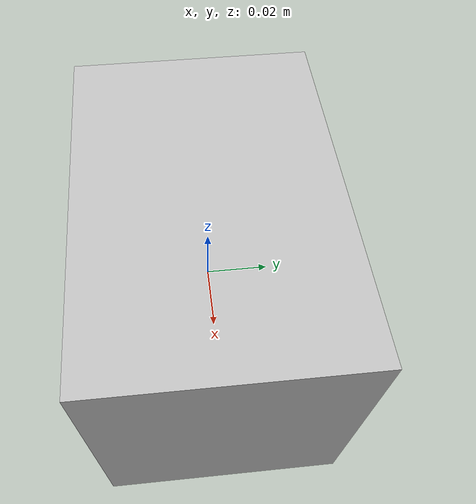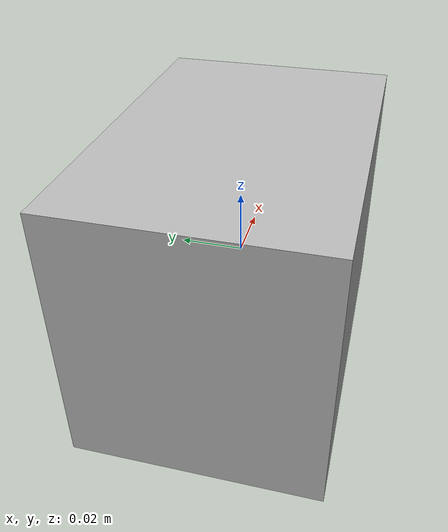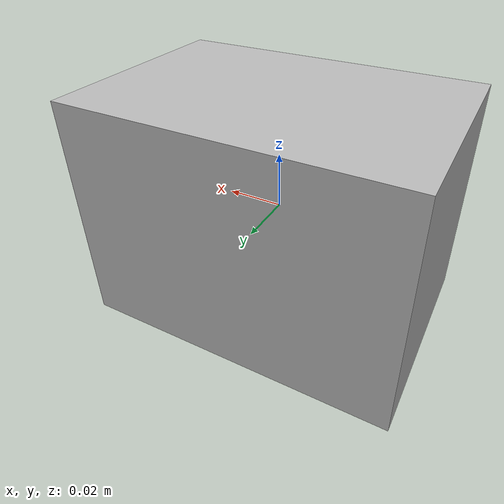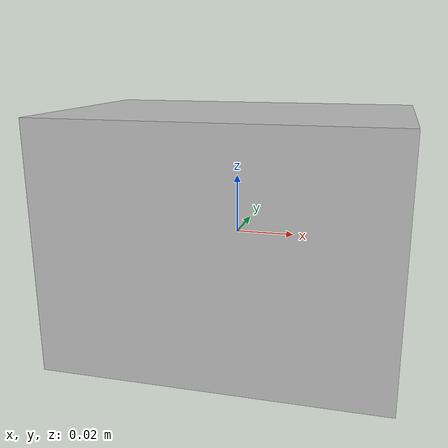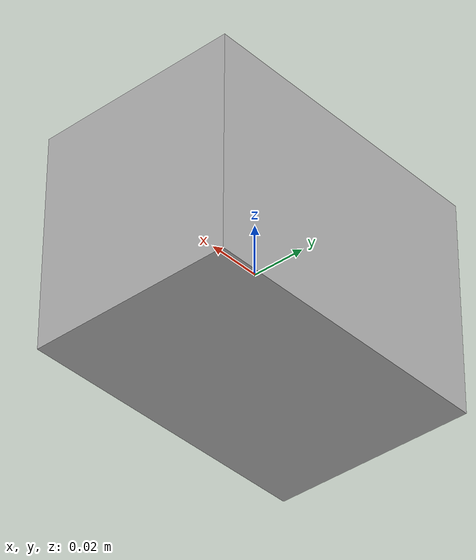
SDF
<?xml version="1.0"?>
<sdf version="1.6">
  <model name="horizon_lidar">
    <link name="horizon_lidar_base">
      <sensor type="ray" name="sensor">
        <pose>0.057 0 0.020 0 0 0</pose>
        <!--Enable visualization here-->
        <always_on>1</always_on>
        <visualize>true</visualize>
        <update_rate>40</update_rate>
        <ray>
          <!--Only need horizontal beams-->
          <scan>
            <horizontal>
              <samples>40</samples>
              <resolution>1</resolution>
              <!--Grab angular resolution in radians-->
              <min_angle>-0.7129669994</min_angle>
              <max_angle>0.7129669994</max_angle>
            </horizontal>
            <vertical>
              <samples>40</samples>
              <resolution>1</resolution>
              <!--Grab angular resolution in radians-->
              <min_angle>-0.2190388211</min_angle>
              <max_angle>0.2190388211</max_angle>
            </vertical>
          </scan>
          <range>
            <min>1</min>
            <max>20</max>
            <resolution>0.01</resolution>
          </range>
        </ray>
      </sensor>
      <pose>0 0 0 0 0 0</pose>
      <inertial>
        <mass>1.18</mass>
        <inertia>
          <ixx>0.00127685833</ixx>
          <iyy>0.00188347666</iyy>
          <izz>0.00199429833</izz>
          <ixy>0</ixy>
          <ixz>0</ixz>
          <iyz>0</iyz>
        </inertia>
      </inertial>
      <collision name="collision">
        <geometry>
          <box>
            <size>0.115 0.077 0.084</size>
          </box>
        </geometry>
      </collision>
      <visual name="visual">
        <geometry>
          <box>
            <size>0.115 0.077 0.084</size>
          </box>
        </geometry>
      </visual>
    </link>
  </model>
</sdf>
